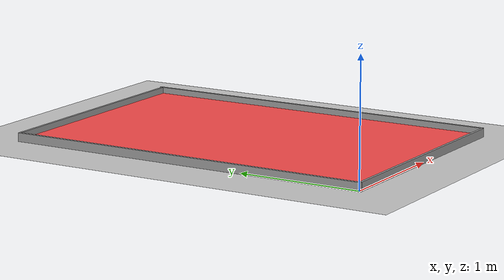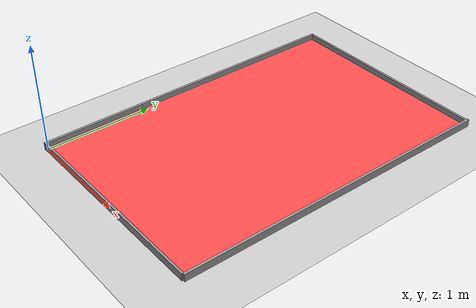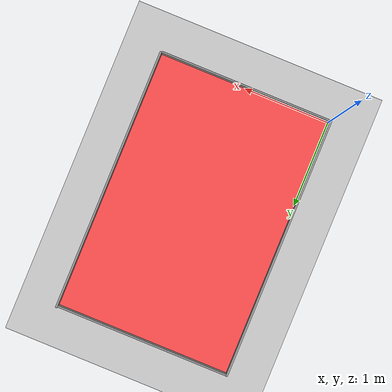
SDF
<sdf version="1.7">
 <world name="default">
  <light name="sun" type="directional">
   <pose>0 0 10 0 -0 0</pose>
   <diffuse>0.8 0.8 0.8 1</diffuse>
   <specular>0.2 0.2 0.2 1</specular>
   <attenuation>
    <range>1000</range>
    <constant>0.9</constant>
    <linear>0.01</linear>
    <quadratic>0.001</quadratic>
   </attenuation>
   <direction>-0.5 0.1 -0.9</direction>
   <spot><inner_angle>0</inner_angle><outer_angle>0</outer_angle><falloff>0</falloff></spot>
  </light>
  <model name="ground_plane">
   <static>1</static>
   <link name="link">
    <collision name="collision">
     <geometry><plane><normal>0 0 1</normal><size>100 100</size></plane></geometry>
     <surface><friction><ode><mu>100</mu><mu2>50</mu2></ode></friction></surface>
    </collision>
    <visual name="visual">
     <cast_shadows>0</cast_shadows>
     <geometry><plane><normal>0 0 1</normal><size>100 100</size></plane></geometry>
     <material>
      <script><uri>file://media/materials/scripts/gazebo.material</uri><name>Gazebo/Grey</name></script>
     </material>
    </visual>
   </link>
  </model>
  <gravity>0 0 -9.8</gravity>
  <magnetic_field>6e-06 2.3e-05 -4.2e-05</magnetic_field>
  <atmosphere type="adiabatic"/>
  <physics type="ode">
   <max_step_size>0.001</max_step_size>
   <real_time_factor>1</real_time_factor>
   <real_time_update_rate>1000</real_time_update_rate>
  </physics>
  <scene><ambient>0.4 0.4 0.4 1</ambient><background>0.7 0.7 0.7 1</background><shadows>1</shadows></scene>
  <audio><device>default</device></audio>
  <spherical_coordinates>
   <surface_model>EARTH_WGS84</surface_model>
   <latitude_deg>0</latitude_deg>
   <longitude_deg>0</longitude_deg>
   <elevation>0</elevation>
   <heading_deg>0</heading_deg>
  </spherical_coordinates>
  <model name="bordure_X">
   <link name="link">
    <inertial>
     <mass>1</mass>
     <inertia>
      <ixx>0.166667</ixx>
      <ixy>0</ixy>
      <ixz>0</ixz>
      <iyy>0.166667</iyy>
      <iyz>0</iyz>
      <izz>0.166667</izz>
     </inertia>
    </inertial>
    <visual name="visual">
     <geometry><box><size>2 0.02 0.07</size></box></geometry>
     <material>
      <script><name>Gazebo/Grey</name><uri>file://media/materials/scripts/gazebo.material</uri></script>
      <shader type="pixel"><normal_map>__default__</normal_map></shader>
      <ambient>0.3 0.3 0.3 1</ambient>
      <diffuse>0.7 0.7 0.7 1</diffuse>
      <specular>0.01 0.01 0.01 1</specular>
      <emissive>0 0 0 1</emissive>
     </material>
    </visual>
    <collision name="collision">
     <geometry><box><size>2 0.022 0.07</size></box></geometry>
     <surface>
      <friction>
       <ode><mu>1</mu><mu2>1</mu2><fdir1>0 0 0</fdir1><slip1>0</slip1><slip2>0</slip2></ode>
       <torsional>
        <coefficient>1</coefficient>
        <patch_radius>0</patch_radius>
        <surface_radius>0</surface_radius>
        <use_patch_radius>1</use_patch_radius>
        <ode><slip>0</slip></ode>
       </torsional>
      </friction>
      <bounce><restitution_coefficient>0</restitution_coefficient><threshold>1e+06</threshold></bounce>
      <contact>
       <collide_without_contact>0</collide_without_contact>
       <collide_without_contact_bitmask>1</collide_without_contact_bitmask>
       <collide_bitmask>1</collide_bitmask>
       <ode>
        <soft_cfm>0</soft_cfm>
        <soft_erp>0.2</soft_erp>
        <kp>1e+13</kp>
        <kd>1</kd>
        <max_vel>0.01</max_vel>
        <min_depth>0</min_depth>
       </ode>
       <bullet>
        <split_impulse>1</split_impulse>
        <split_impulse_penetration_threshold>-0.01</split_impulse_penetration_threshold>
        <soft_cfm>0</soft_cfm>
        <soft_erp>0.2</soft_erp>
        <kp>1e+13</kp>
        <kd>1</kd>
       </bullet>
      </contact>
     </surface>
    </collision>
   </link>
   <static>0</static>
   <pose>1 -0.011001 0.035 1e-05 -0 0</pose>
  </model>
  <model name="bordure_X_clone">
   <link name="link">
    <inertial>
     <mass>1</mass>
     <inertia>
      <ixx>0.166667</ixx>
      <ixy>0</ixy>
      <ixz>0</ixz>
      <iyy>0.166667</iyy>
      <iyz>0</iyz>
      <izz>0.166667</izz>
     </inertia>
    </inertial>
    <visual name="visual">
     <geometry><box><size>2 0.02 0.07</size></box></geometry>
     <material>
      <script><name>Gazebo/Grey</name><uri>file://media/materials/scripts/gazebo.material</uri></script>
      <shader type="pixel"><normal_map>__default__</normal_map></shader>
      <ambient>0.3 0.3 0.3 1</ambient>
      <diffuse>0.7 0.7 0.7 1</diffuse>
      <specular>0.01 0.01 0.01 1</specular>
      <emissive>0 0 0 1</emissive>
     </material>
    </visual>
    <collision name="collision">
     <geometry><box><size>2 0.022 0.07</size></box></geometry>
     <surface>
      <friction>
       <ode><mu>1</mu><mu2>1</mu2><fdir1>0 0 0</fdir1><slip1>0</slip1><slip2>0</slip2></ode>
       <torsional>
        <coefficient>1</coefficient>
        <patch_radius>0</patch_radius>
        <surface_radius>0</surface_radius>
        <use_patch_radius>1</use_patch_radius>
        <ode><slip>0</slip></ode>
       </torsional>
      </friction>
      <bounce><restitution_coefficient>0</restitution_coefficient><threshold>1e+06</threshold></bounce>
      <contact>
       <collide_without_contact>0</collide_without_contact>
       <collide_without_contact_bitmask>1</collide_without_contact_bitmask>
       <collide_bitmask>1</collide_bitmask>
       <ode>
        <soft_cfm>0</soft_cfm>
        <soft_erp>0.2</soft_erp>
        <kp>1e+13</kp>
        <kd>1</kd>
        <max_vel>0.01</max_vel>
        <min_depth>0</min_depth>
       </ode>
       <bullet>
        <split_impulse>1</split_impulse>
        <split_impulse_penetration_threshold>-0.01</split_impulse_penetration_threshold>
        <soft_cfm>0</soft_cfm>
        <soft_erp>0.2</soft_erp>
        <kp>1e+13</kp>
        <kd>1</kd>
       </bullet>
      </contact>
     </surface>
    </collision>
   </link>
   <static>0</static>
   <pose>1 3.01105 0.034931 -1.9e-05 6.9e-05 1.8e-05</pose>
  </model>
  <model name="plateau">
   <link name="link">
    <inertial>
     <mass>1</mass>
     <inertia>
      <ixx>0.166667</ixx>
      <ixy>0</ixy>
      <ixz>0</ixz>
      <iyy>0.166667</iyy>
      <iyz>0</iyz>
      <izz>0.166667</izz>
     </inertia>
    </inertial>
    <visual name="visual">
     <geometry><box><size>2 3 0.1</size></box></geometry>
     <material>
      <script><name>Gazebo/Grey</name><uri>file://media/materials/scripts/gazebo.material</uri></script>
      <shader type="pixel"><normal_map>__default__</normal_map></shader>
      <ambient>1 0.3 0.3 1</ambient>
      <diffuse>0.7 0.7 0.7 1</diffuse>
      <specular>0.01 0.01 0.01 1</specular>
      <emissive>0 0 0 1</emissive>
     </material>
    </visual>
    <collision name="collision">
     <geometry><box><size>2 3 0.1</size></box></geometry>
     <surface>
      <friction>
       <ode><mu>1</mu><mu2>1</mu2><fdir1>0 0 0</fdir1><slip1>0</slip1><slip2>0</slip2></ode>
       <torsional>
        <coefficient>1</coefficient>
        <patch_radius>0</patch_radius>
        <surface_radius>0</surface_radius>
        <use_patch_radius>1</use_patch_radius>
        <ode><slip>0</slip></ode>
       </torsional>
      </friction>
      <bounce><restitution_coefficient>0</restitution_coefficient><threshold>1e+06</threshold></bounce>
      <contact>
       <collide_without_contact>0</collide_without_contact>
       <collide_without_contact_bitmask>1</collide_without_contact_bitmask>
       <collide_bitmask>1</collide_bitmask>
       <ode>
        <soft_cfm>0</soft_cfm>
        <soft_erp>0.2</soft_erp>
        <kp>1e+13</kp>
        <kd>1</kd>
        <max_vel>0.01</max_vel>
        <min_depth>0</min_depth>
       </ode>
       <bullet>
        <split_impulse>1</split_impulse>
        <split_impulse_penetration_threshold>-0.01</split_impulse_penetration_threshold>
        <soft_cfm>0</soft_cfm>
        <soft_erp>0.2</soft_erp>
        <kp>1e+13</kp>
        <kd>1</kd>
       </bullet>
      </contact>
     </surface>
    </collision>
   </link>
   <static>1</static>
   <pose>1 1.5 -0.03 0 -0 0</pose>
  </model>
  <model name="bord_y">
   <link name="link">
    <inertial>
     <mass>1</mass>
     <inertia>
      <ixx>0.166667</ixx>
      <ixy>0</ixy>
      <ixz>0</ixz>
      <iyy>0.166667</iyy>
      <iyz>0</iyz>
      <izz>0.166667</izz>
     </inertia>
    </inertial>
    <visual name="visual">
     <geometry><box><size>0.022 3.044 0.07</size></box></geometry>
     <material>
      <script><name>Gazebo/Grey</name><uri>file://media/materials/scripts/gazebo.material</uri></script>
      <shader type="pixel"><normal_map>__default__</normal_map></shader>
      <ambient>0.3 0.3 0.3 1</ambient>
      <diffuse>0.7 0.7 0.7 1</diffuse>
      <specular>0.01 0.01 0.01 1</specular>
      <emissive>0 0 0 1</emissive>
     </material>
    </visual>
    <collision name="collision">
     <geometry><box><size>0.022 3.044 0.07</size></box></geometry>
     <surface>
      <friction>
       <ode><mu>1</mu><mu2>1</mu2><fdir1>0 0 0</fdir1><slip1>0</slip1><slip2>0</slip2></ode>
       <torsional>
        <coefficient>1</coefficient>
        <patch_radius>0</patch_radius>
        <surface_radius>0</surface_radius>
        <use_patch_radius>1</use_patch_radius>
        <ode><slip>0</slip></ode>
       </torsional>
      </friction>
      <bounce><restitution_coefficient>0</restitution_coefficient><threshold>1e+06</threshold></bounce>
      <contact>
       <collide_without_contact>0</collide_without_contact>
       <collide_without_contact_bitmask>1</collide_without_contact_bitmask>
       <collide_bitmask>1</collide_bitmask>
       <ode>
        <soft_cfm>0</soft_cfm>
        <soft_erp>0.2</soft_erp>
        <kp>1e+13</kp>
        <kd>1</kd>
        <max_vel>0.01</max_vel>
        <min_depth>0</min_depth>
       </ode>
       <bullet>
        <split_impulse>1</split_impulse>
        <split_impulse_penetration_threshold>-0.01</split_impulse_penetration_threshold>
        <soft_cfm>0</soft_cfm>
        <soft_erp>0.2</soft_erp>
        <kp>1e+13</kp>
        <kd>1</kd>
       </bullet>
      </contact>
     </surface>
    </collision>
   </link>
   <static>0</static>
   <pose>2.01101 1.51099 0.034727 0.00018 5.3e-05 1e-06</pose>
  </model>
  <model name="bord_y_clone">
   <link name="link">
    <inertial>
     <mass>1</mass>
     <inertia>
      <ixx>0.166667</ixx>
      <ixy>0</ixy>
      <ixz>0</ixz>
      <iyy>0.166667</iyy>
      <iyz>0</iyz>
      <izz>0.166667</izz>
     </inertia>
    </inertial>
    <visual name="visual">
     <geometry><box><size>0.022 3.044 0.07</size></box></geometry>
     <material>
      <script><name>Gazebo/Grey</name><uri>file://media/materials/scripts/gazebo.material</uri></script>
      <shader type="pixel"><normal_map>__default__</normal_map></shader>
      <ambient>0.3 0.3 0.3 1</ambient>
      <diffuse>0.7 0.7 0.7 1</diffuse>
      <specular>0.01 0.01 0.01 1</specular>
      <emissive>0 0 0 1</emissive>
     </material>
    </visual>
    <collision name="collision">
     <geometry><box><size>0.022 3.044 0.07</size></box></geometry>
     <surface>
      <friction>
       <ode><mu>1</mu><mu2>1</mu2><fdir1>0 0 0</fdir1><slip1>0</slip1><slip2>0</slip2></ode>
       <torsional>
        <coefficient>1</coefficient>
        <patch_radius>0</patch_radius>
        <surface_radius>0</surface_radius>
        <use_patch_radius>1</use_patch_radius>
        <ode><slip>0</slip></ode>
       </torsional>
      </friction>
      <bounce><restitution_coefficient>0</restitution_coefficient><threshold>1e+06</threshold></bounce>
      <contact>
       <collide_without_contact>0</collide_without_contact>
       <collide_without_contact_bitmask>1</collide_without_contact_bitmask>
       <collide_bitmask>1</collide_bitmask>
       <ode>
        <soft_cfm>0</soft_cfm>
        <soft_erp>0.2</soft_erp>
        <kp>1e+13</kp>
        <kd>1</kd>
        <max_vel>0.01</max_vel>
        <min_depth>0</min_depth>
       </ode>
       <bullet>
        <split_impulse>1</split_impulse>
        <split_impulse_penetration_threshold>-0.01</split_impulse_penetration_threshold>
        <soft_cfm>0</soft_cfm>
        <soft_erp>0.2</soft_erp>
        <kp>1e+13</kp>
        <kd>1</kd>
       </bullet>
      </contact>
     </surface>
    </collision>
   </link>
   <static>0</static>
   <pose>-0.011012 1.5 0.034966 2.2e-05 1.9e-05 -1e-06</pose>
  </model>
 </world>
</sdf>
